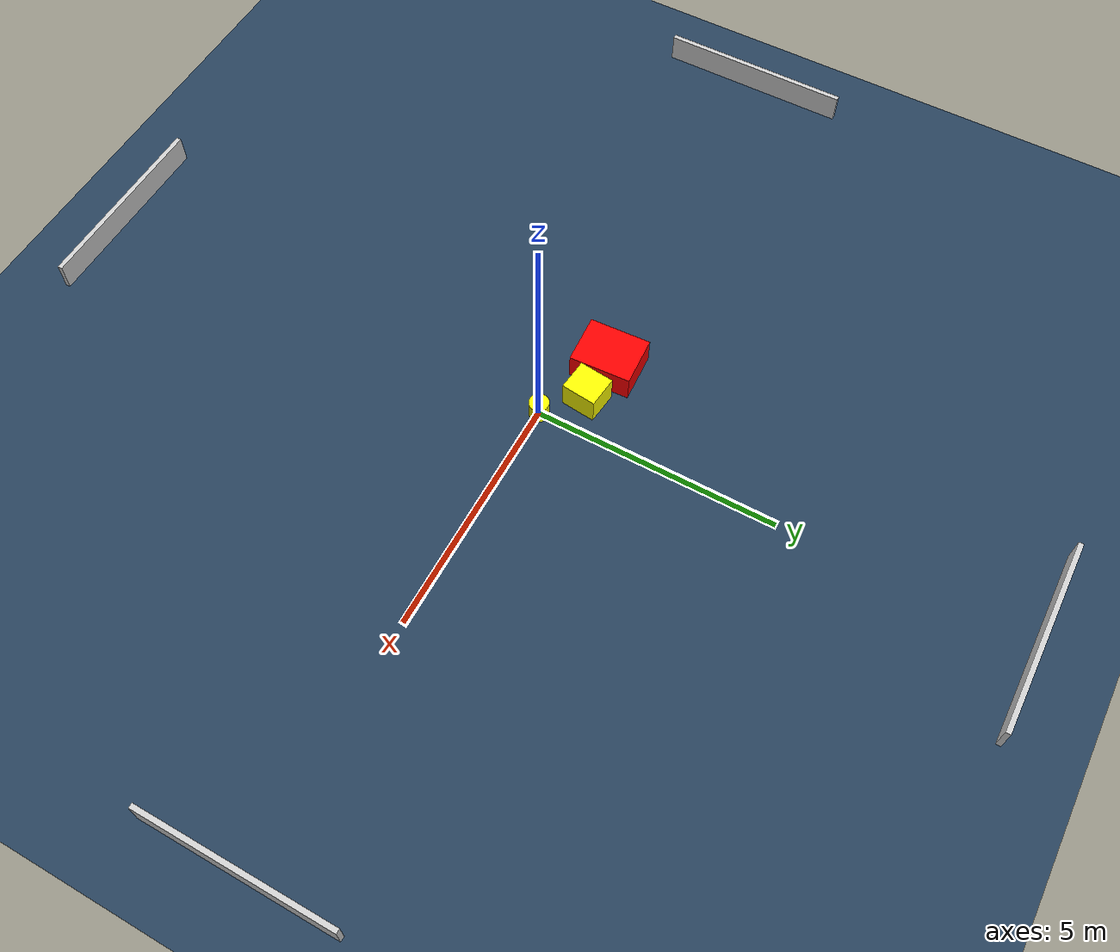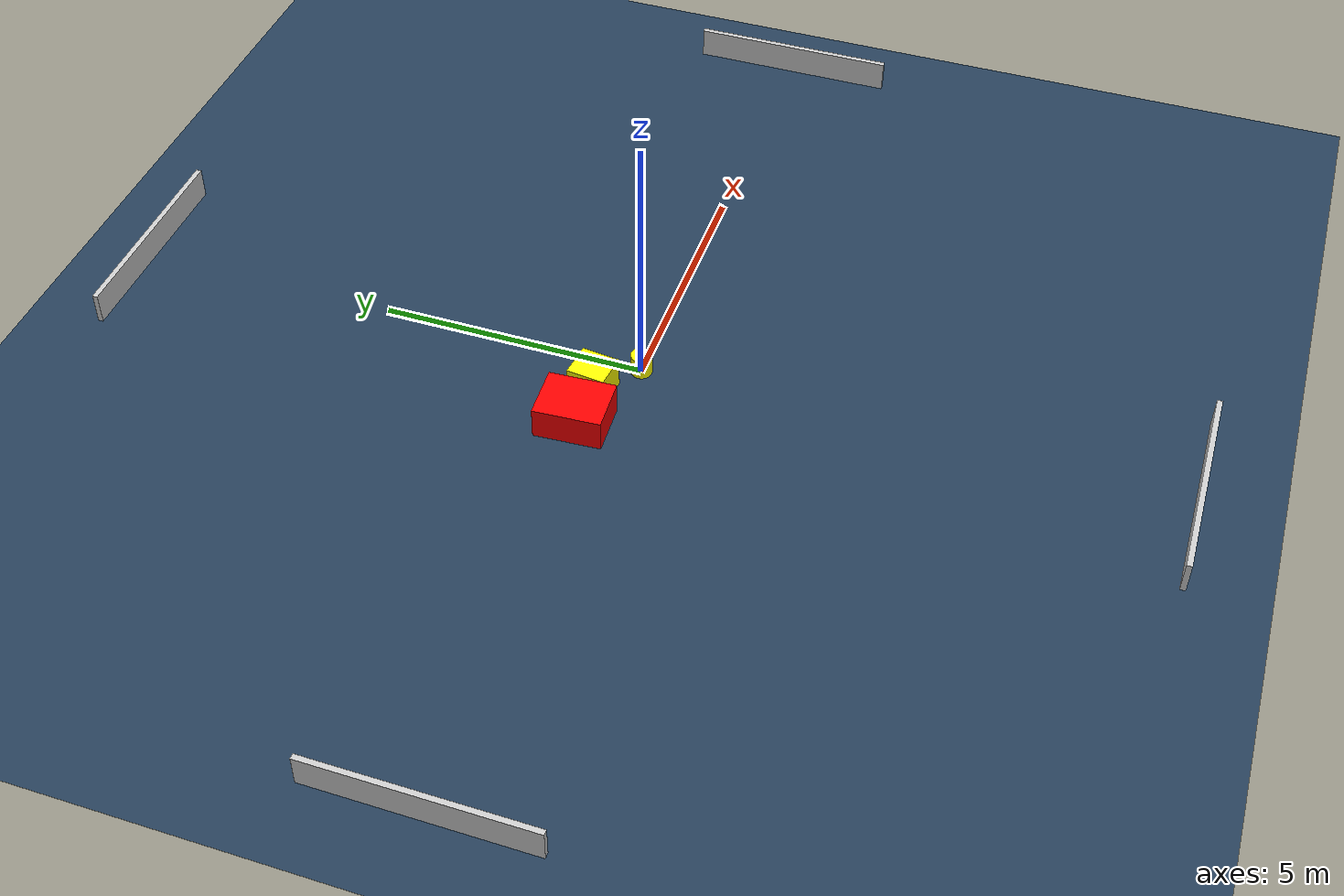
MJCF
<?xml version="1.0" ?>
<mujoco model="generated_environment">
  <option timestep="0.01" integrator="RK4" cone="elliptic"/>
  <default>
    <geom density="1"/>
  </default>
  <asset>
    <texture builtin="gradient" height="3072" name="skybox" rgb1="0.3 0.5 0.7" rgb2="0 0 0" type="skybox" width="512"/>
    <texture builtin="checker" height="300" name="groundplane" rgb1="0.2 0.3 0.4" rgb2="0.1 0.2 0.3" type="2d" width="300"/>
    <material name="groundplane" reflectance="0.2" texrepeat="5 5" texture="groundplane"/>
  </asset>
  <worldbody>
    <light dir="0 0 -1" directional="true" pos="0 0 1.5"/>
    <geom condim="3" friction="0.5 0.005 0.001" material="groundplane" name="floor" pos="0 0 0" size="0 0 0.05" type="plane"/>
    <body name="walls">
      <geom name="wall_1" condim="4" pos="-10.0 0.0 0.3" rgba="0.800000011920929 0.800000011920929 0.800000011920929 1.0" size="0.05 2.0 0.3" type="box"/>
      <geom name="wall_2" condim="4" pos="10.0 0.0 0.3" rgba="0.800000011920929 0.800000011920929 0.800000011920929 1.0" size="0.05 2.0 0.3" type="box"/>
      <geom name="wall_3" condim="4" pos="0.0 -10.0 0.3" rgba="0.800000011920929 0.800000011920929 0.800000011920929 1.0" size="2.0 0.05 0.3" type="box"/>
      <geom name="wall_4" condim="4" pos="0.0 10.0 0.3" rgba="0.800000011920929 0.800000011920929 0.800000011920929 1.0" size="2.0 0.05 0.3" type="box"/>
    </body>
    <body name="robot">
      <joint name="joint_x" type="slide" pos="0 0 0" axis="1 0 0"/>
      <joint name="joint_y" type="slide" pos="0 0 0" axis="0 1 0"/>
      <geom name="robot" type="cylinder" pos="0.0 0.0 0.2" size="0.2 0.2 0.0" mass="5.0" friction="1.0 0.005 0.0001" condim="4" rgba="1.0 1.0 0.0 1.0"/>
    </body>
    <body name="obstacle_1_movable">
      <geom name="obstacle_1_movable" condim="4" pos="-0.7264424636093789 0.6640156053467895 0.3" euler="0 0 173.7670917887687" friction="0.0 0.005 0.001" rgba="1.0 1.0 0.0 1.0" size="0.32459256622619126 0.3579772821176192 0.3" type="box" mass="0.1"/>
      <joint type="free"/>
    </body>
    <body name="obstacle_2_static">
      <geom name="obstacle_2_static" condim="4" pos="-1.6187184949222542 0.6850104145532498 0.3" euler="0 0 273.1603236617735" friction="0.0 0.005 0.001" rgba="1.0 0.0 0.0 1.0" size="0.6286196346424595 0.5072600998737722 0.3" type="box"/>
    </body>
  </worldbody>
  <actuator>
    <motor name="actuator_x" joint="joint_x" gear="1" ctrlrange="-1 1"/>
    <motor name="actuator_y" joint="joint_y" gear="1" ctrlrange="-1 1"/>
  </actuator>
</mujoco>
